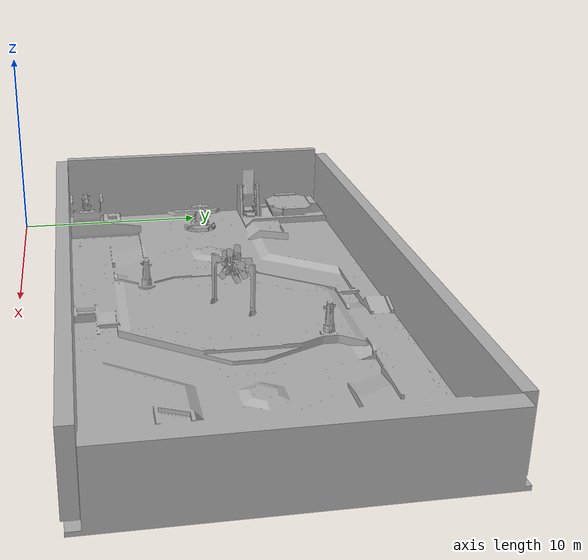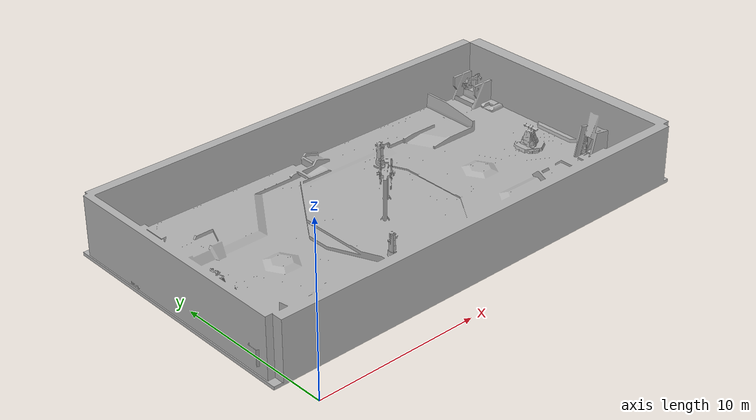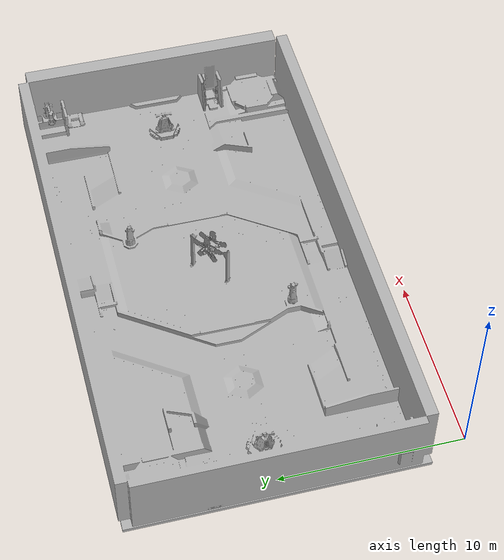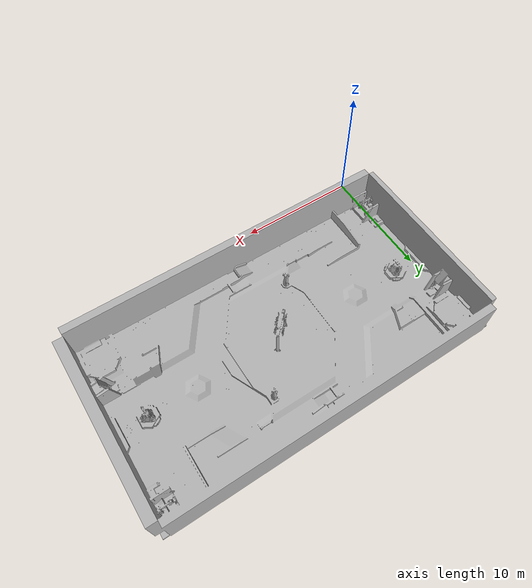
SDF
<?xml version='1.0' encoding='utf-8'?>
<sdf version='1.7'>
  <world name='default'>
    <plugin filename="libignition-gazebo-physics-system.so" name="ignition::gazebo::systems::Physics">
    </plugin>

    <plugin filename="libignition-gazebo-scene-broadcaster-system.so" name="ignition::gazebo::systems::SceneBroadcaster">
    </plugin>

    <plugin filename="libignition-gazebo-user-commands-system.so" name="ignition::gazebo::systems::UserCommands">
    </plugin>

    <plugin filename="libignition-gazebo-sensors-system.so" name="ignition::gazebo::systems::Sensors">
      <render_engine>ogre2</render_engine>
    </plugin>

    <plugin filename="libignition-gazebo-imu-system.so" name="ignition::gazebo::systems::Imu">
    </plugin>

    <light type='directional' name='direct_light'>
      <visualize>false</visualize>
      <cast_shadows>true</cast_shadows>
      <pose>15 8 10 0 0 0</pose>
      <diffuse>1.0 1.0 1.0 1</diffuse>
      <specular>0.5 0.5 0.5 1</specular>
      <attenuation>
        <range>1000</range>
        <constant>0.9</constant>
        <linear>0.01</linear>
        <quadratic>0.001</quadratic>
      </attenuation>
      <direction>0 0 -1</direction>
    </light>

    <model name='rmuc_2026fix'>
      <include>
        <uri>model://rmuc_2026fix</uri>
      </include>
      <pose>0.0 0.0 0 0 0 0</pose>
      <static>true</static>
    </model>
  </world>
</sdf>

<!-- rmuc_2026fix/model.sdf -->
<sdf version='1.6'>
  <model name='rmuc_2026fix'>
    <static>true</static>
    <link name='body'>
      <pose frame=''>13.5 8.5 1.80 0 0 0</pose>
      <self_collide>0</self_collide>
      <kinematic>0</kinematic>
      <gravity>1</gravity>
      <visual name='visual'>
        <geometry>
          <mesh>
            <uri>model://rmuc_2026fix/meshes/RMUC_2026_fix.stl</uri>
            <scale>0.1 0.1 0.1</scale>
          </mesh>
        </geometry>
        <material>
          <ambient>0.3 0.3 0.3 1</ambient>
          <diffuse>0.7 0.7 0.7 1</diffuse>
          <specular>0.01 0.01 0.01 1</specular>
        </material>
      </visual>
      <collision name='collision'>
        <geometry>
          <mesh>
            <uri>model://rmuc_2026fix/meshes/RMUC_2026_fix.stl</uri>
            <scale>0.1 0.1 0.1</scale>
          </mesh>
        </geometry>
      </collision>
    </link>
  </model>
</sdf>
